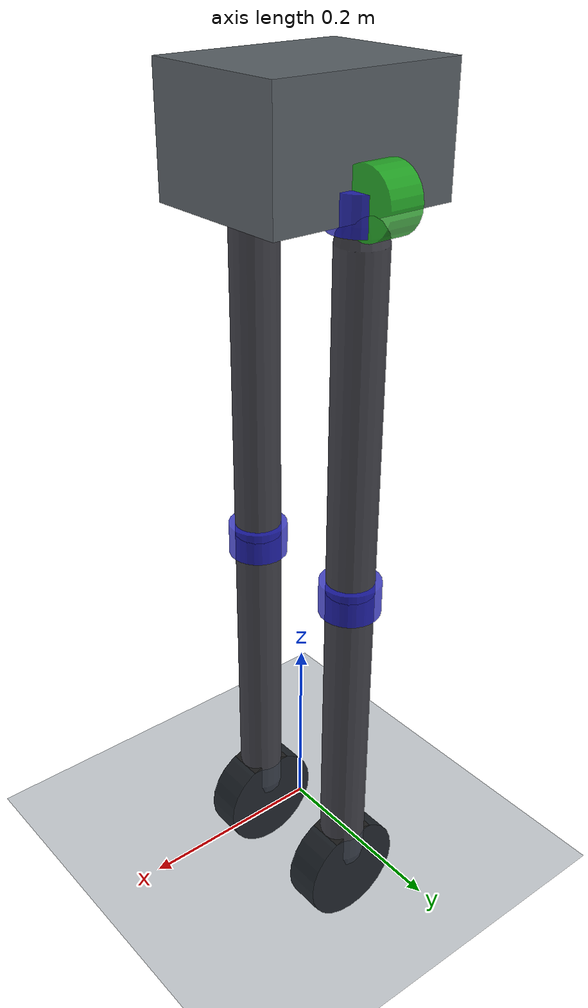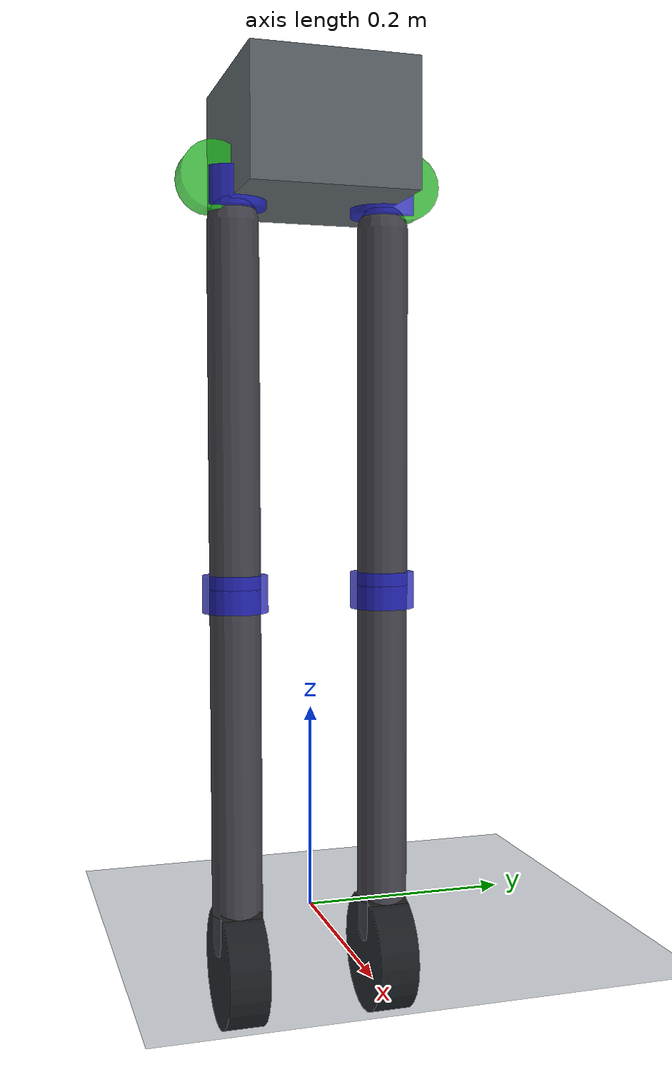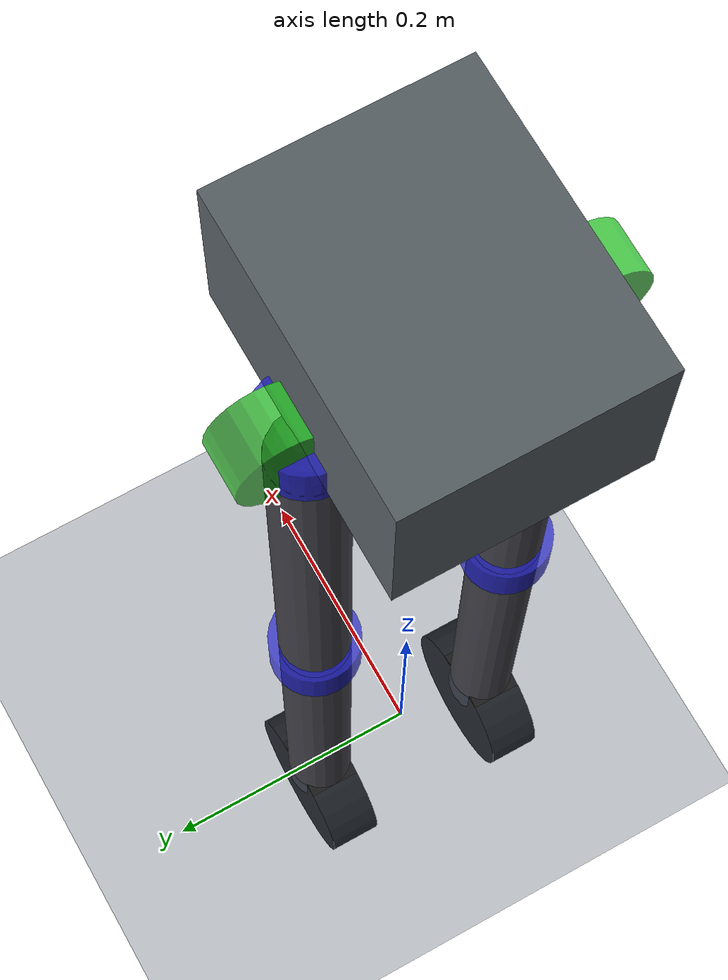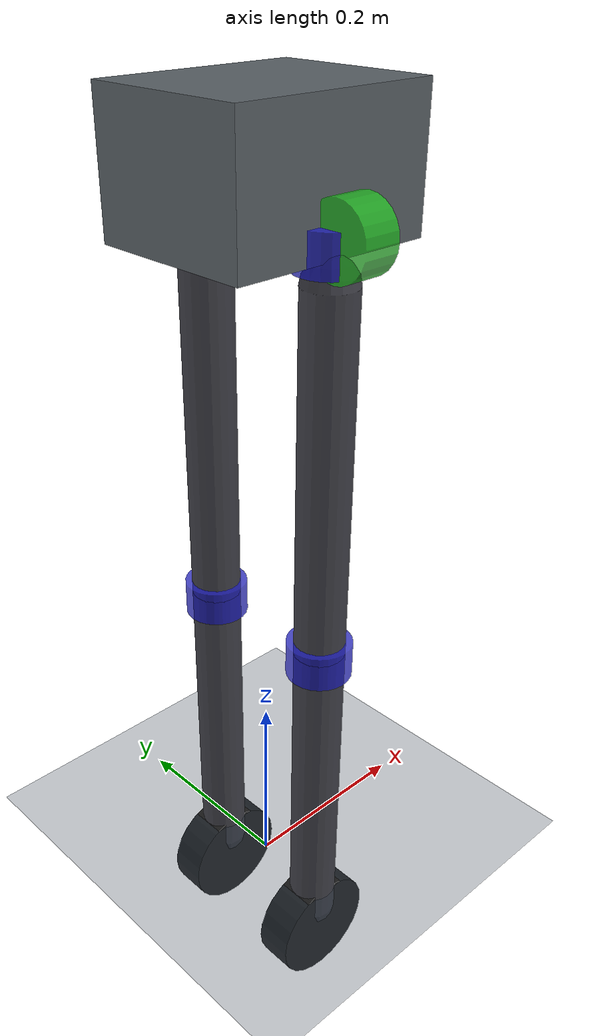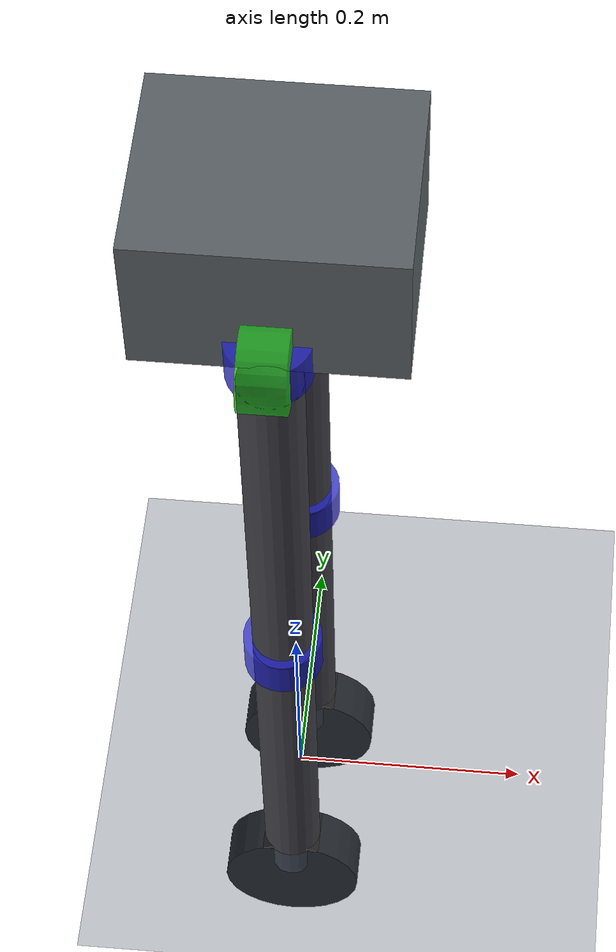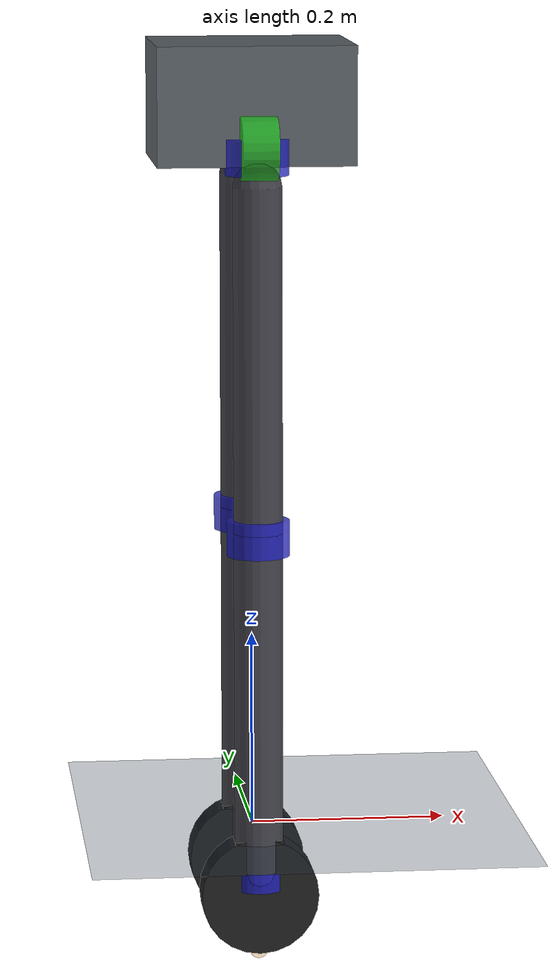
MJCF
<mujoco model="wheeled_biped">

  <!-- ==================== COMPILER ==================== -->
  <compiler angle="radian" autolimits="true"/>

  <!-- ==================== OPTIONS ==================== -->
  <option timestep="0.002" gravity="0 0 -9.81" integrator="implicitfast"
          iterations="4" ls_iterations="8" cone="pyramidal">
    <flag contact="enable"/>
  </option>

  <!-- ==================== SIZE ==================== -->
  <size nconmax="200" njmax="500"/>

  <!-- ==================== DEFAULTS ==================== -->
  <default>
    <!-- Mặc định toàn cục -->
    <default class="robot">
      <joint damping="1.0" armature="0.01" frictionloss="0.1"/>
      <geom condim="3" contype="1" conaffinity="1" friction="0.8 0.02 0.01"
            rgba="0.35 0.35 0.35 1"/>
      <motor ctrllimited="true"/>
    </default>

    <!-- Khớp khung chân -->
    <default class="leg_link">
      <geom type="capsule" size="0.025" rgba="0.25 0.25 0.28 1"/>
    </default>

    <!-- Khớp motor (hiển thị) -->
    <default class="motor_visual">
      <geom type="cylinder" size="0.032 0.018" contype="0" conaffinity="0"
            group="1" rgba="0.15 0.15 0.8 0.8"/>
    </default>

    <!-- Bánh xe -->
    <default class="wheel">
      <geom type="cylinder" condim="6" friction="1.5 0.005 0.001"
            rgba="0.12 0.12 0.12 1" priority="1"/>
    </default>
  </default>

  <!-- ==================== ASSETS ==================== -->
  <asset>
    <!-- Texture mặt đất -->
    <texture name="grid_tex" type="2d" builtin="checker" width="512" height="512"
             rgb1="0.12 0.18 0.25" rgb2="0.22 0.28 0.35"/>
    <material name="grid_mat" texture="grid_tex" texrepeat="10 10"
              reflectance="0.1"/>

    <!-- Material robot -->
    <material name="body_mat"  rgba="0.35 0.38 0.40 1" specular="0.5" shininess="0.3"/>
    <material name="leg_mat"   rgba="0.25 0.25 0.28 1" specular="0.3"/>
    <material name="wheel_mat" rgba="0.10 0.10 0.10 1" specular="0.1"/>
    <material name="motor_mat" rgba="0.15 0.15 0.70 0.9"/>
  </asset>

  <!-- ==================== WORLDBODY ==================== -->
  <worldbody>
    <!-- Ánh sáng -->
    <light name="top_light"    pos="0 0 3" dir="0 0 -1" diffuse="0.8 0.8 0.8"
           specular="0.3 0.3 0.3" castshadow="true"/>
    <light name="front_light"  pos="2 -2 2" dir="-1 1 -0.5" diffuse="0.4 0.4 0.4"/>

    <!-- Mặt đất -->
    <geom name="floor" type="plane" size="50 50 0.1" material="grid_mat"
          condim="3" contype="1" conaffinity="1"/>

    <!-- ==================== ROBOT BODY ==================== -->
    <body name="torso" pos="0 0 0.75">
      <freejoint name="root"/>

      <!-- Thân robot (contype=0: MJX không hỗ trợ cylinder-box collision) -->
      <geom name="torso_box" type="box" size="0.10 0.08 0.06"
            material="body_mat" mass="2.0" contype="0" conaffinity="0"/>

      <!-- Điểm gắn cảm biến IMU -->
      <site name="imu_site" pos="0 0 0" size="0.005" rgba="1 0 0 0.5"/>

      <!-- Điểm theo dõi trọng tâm -->
      <site name="torso_com" pos="0 0 0" size="0.01" rgba="0 1 0 0.3"/>

      <!-- =====================================================
           CHÂN TRÁI
           ===================================================== -->
      <body name="l_hip_roll_link" pos="0 0.075 -0.04">
        <inertial mass="0.4" pos="0 0.01 0"
                  diaginertia="0.0004 0.0004 0.0003"/>
        <joint name="l_hip_roll" type="hinge" axis="1 0 0"
               range="-0.5 0.5" damping="1.5" armature="0.02" ref="0"/>
        <geom name="l_hip_roll_motor" class="motor_visual"
              euler="0 1.5708 0" pos="0 0.02 0"
              rgba="0.15 0.75 0.15 0.8"/>

        <body name="l_hip_pitch_link" pos="0 0 0">
          <inertial mass="0.4" pos="0 0 -0.03"
                    diaginertia="0.0004 0.0004 0.0003"/>
          <joint name="l_hip_pitch" type="hinge" axis="0 1 0"
                 range="-1.5 1.5" damping="1.5" armature="0.02" ref="0"/>
          <geom name="l_hip_pitch_motor" class="motor_visual"
                pos="0 0 -0.01"/>

          <!-- Đùi trái (0.35m) -->
          <body name="l_thigh" pos="0 0 -0.04">
            <inertial mass="0.55" pos="0 0 -0.175"
                      diaginertia="0.0060 0.0060 0.0005"/>
            <geom name="l_thigh_geom" class="leg_link"
                  fromto="0 0 0  0 0 -0.35" material="leg_mat"
                  mass="0.55"/>
            <site name="l_thigh_center" pos="0 0 -0.175" size="0.005"/>

            <!-- Gối trái -->
            <body name="l_knee_link" pos="0 0 -0.35">
              <inertial mass="0.55" pos="0 0 -0.175"
                        diaginertia="0.0060 0.0060 0.0005"/>
              <joint name="l_knee" type="hinge" axis="0 1 0"
                     range="0.05 2.8" damping="1.5" armature="0.02" ref="0"/>
              <geom name="l_knee_motor" class="motor_visual"
                    pos="0 0 -0.005"/>
              <geom name="l_shin_geom" class="leg_link"
                    fromto="0 0 0  0 0 -0.35" material="leg_mat"
                    mass="0.55"/>
              <site name="l_shin_center" pos="0 0 -0.175" size="0.005"/>

              <!-- Cổ chân trái -->
              <body name="l_ankle_link" pos="0 0 -0.35">
                <inertial mass="0.15" pos="0 0 -0.01"
                          diaginertia="0.0002 0.0002 0.0001"/>
                <joint name="l_ankle" type="hinge" axis="0 1 0"
                       range="-1.0 1.0" damping="0.8" armature="0.01" ref="0"/>
                <geom name="l_ankle_motor" class="motor_visual"
                      size="0.028 0.015" pos="0 0 -0.005"/>

                <!-- Cảm biến tiếp xúc chân trái -->
                <site name="l_foot_contact" pos="0 0 -0.02"
                      size="0.02" rgba="1 1 0 0.3"/>

                <!-- Bánh xe trái -->
                <body name="l_wheel_link" pos="0 0 -0.025">
                  <inertial mass="0.55" pos="0 0 0"
                            diaginertia="0.0012 0.0018 0.0012"/>
                  <joint name="l_wheel" type="hinge" axis="0 1 0"
                         limited="false" damping="0.02" armature="0.008"/>
                  <geom name="l_wheel_geom" class="wheel"
                        size="0.06 0.02" euler="1.5708 0 0"
                        material="wheel_mat" mass="0.55"/>
                  <site name="l_wheel_contact" pos="0 0 -0.06"
                        size="0.01" rgba="1 0.5 0 0.3"/>
                </body>
              </body>
            </body>
          </body>
        </body>
      </body>

      <!-- =====================================================
           CHÂN PHẢI (đối xứng qua y=0)
           ===================================================== -->
      <body name="r_hip_roll_link" pos="0 -0.075 -0.04">
        <inertial mass="0.4" pos="0 -0.01 0"
                  diaginertia="0.0004 0.0004 0.0003"/>
        <joint name="r_hip_roll" type="hinge" axis="1 0 0"
               range="-0.5 0.5" damping="1.5" armature="0.02" ref="0"/>
        <geom name="r_hip_roll_motor" class="motor_visual"
              euler="0 1.5708 0" pos="0 -0.02 0"
              rgba="0.15 0.75 0.15 0.8"/>

        <body name="r_hip_pitch_link" pos="0 0 0">
          <inertial mass="0.4" pos="0 0 -0.03"
                    diaginertia="0.0004 0.0004 0.0003"/>
          <joint name="r_hip_pitch" type="hinge" axis="0 1 0"
                 range="-1.5 1.5" damping="1.5" armature="0.02" ref="0"/>
          <geom name="r_hip_pitch_motor" class="motor_visual"
                pos="0 0 -0.01"/>

          <!-- Đùi phải (0.35m) -->
          <body name="r_thigh" pos="0 0 -0.04">
            <inertial mass="0.55" pos="0 0 -0.175"
                      diaginertia="0.0060 0.0060 0.0005"/>
            <geom name="r_thigh_geom" class="leg_link"
                  fromto="0 0 0  0 0 -0.35" material="leg_mat"
                  mass="0.55"/>
            <site name="r_thigh_center" pos="0 0 -0.175" size="0.005"/>

            <!-- Gối phải -->
            <body name="r_knee_link" pos="0 0 -0.35">
              <inertial mass="0.55" pos="0 0 -0.175"
                        diaginertia="0.0060 0.0060 0.0005"/>
              <joint name="r_knee" type="hinge" axis="0 1 0"
                     range="0.05 2.8" damping="1.5" armature="0.02" ref="0"/>
              <geom name="r_knee_motor" class="motor_visual"
                    pos="0 0 -0.005"/>
              <geom name="r_shin_geom" class="leg_link"
                    fromto="0 0 0  0 0 -0.35" material="leg_mat"
                    mass="0.55"/>
              <site name="r_shin_center" pos="0 0 -0.175" size="0.005"/>

              <!-- Cổ chân phải -->
              <body name="r_ankle_link" pos="0 0 -0.35">
                <inertial mass="0.15" pos="0 0 -0.01"
                          diaginertia="0.0002 0.0002 0.0001"/>
                <joint name="r_ankle" type="hinge" axis="0 1 0"
                       range="-1.0 1.0" damping="0.8" armature="0.01" ref="0"/>
                <geom name="r_ankle_motor" class="motor_visual"
                      size="0.028 0.015" pos="0 0 -0.005"/>

                <!-- Cảm biến tiếp xúc chân phải -->
                <site name="r_foot_contact" pos="0 0 -0.02"
                      size="0.02" rgba="1 1 0 0.3"/>

                <!-- Bánh xe phải -->
                <body name="r_wheel_link" pos="0 0 -0.025">
                  <inertial mass="0.55" pos="0 0 0"
                            diaginertia="0.0012 0.0018 0.0012"/>
                  <joint name="r_wheel" type="hinge" axis="0 1 0"
                         limited="false" damping="0.02" armature="0.008"/>
                  <geom name="r_wheel_geom" class="wheel"
                        size="0.06 0.02" euler="1.5708 0 0"
                        material="wheel_mat" mass="0.55"/>
                  <site name="r_wheel_contact" pos="0 0 -0.06"
                        size="0.01" rgba="1 0.5 0 0.3"/>
                </body>
              </body>
            </body>
          </body>
        </body>
      </body>

    </body>  <!-- end torso -->
  </worldbody>

  <!-- ==================== CONTACT ==================== -->
  <contact>
    <!-- Loại trừ va chạm nội bộ giữa các link liền kề -->
    <exclude body1="torso"          body2="l_hip_roll_link"/>
    <exclude body1="torso"          body2="r_hip_roll_link"/>
    <exclude body1="l_hip_roll_link" body2="l_hip_pitch_link"/>
    <exclude body1="r_hip_roll_link" body2="r_hip_pitch_link"/>
    <exclude body1="l_hip_pitch_link" body2="l_thigh"/>
    <exclude body1="r_hip_pitch_link" body2="r_thigh"/>
    <exclude body1="l_thigh"        body2="l_knee_link"/>
    <exclude body1="r_thigh"        body2="r_knee_link"/>
    <exclude body1="l_knee_link"    body2="l_ankle_link"/>
    <exclude body1="r_knee_link"    body2="r_ankle_link"/>
    <exclude body1="l_ankle_link"   body2="l_wheel_link"/>
    <exclude body1="r_ankle_link"   body2="r_wheel_link"/>
    <!-- Loại trừ va chạm giữa shin và wheel (cách 1 link) -->
    <exclude body1="l_knee_link"    body2="l_wheel_link"/>
    <exclude body1="r_knee_link"    body2="r_wheel_link"/>
    <!-- Loại trừ va chạm thigh-torso (cách 2 link) -->
    <exclude body1="torso"          body2="l_thigh"/>
    <exclude body1="torso"          body2="r_thigh"/>
    <!-- Loại trừ torso với các body xa hơn -->
    <exclude body1="torso"          body2="l_knee_link"/>
    <exclude body1="torso"          body2="r_knee_link"/>
    <exclude body1="torso"          body2="l_ankle_link"/>
    <exclude body1="torso"          body2="r_ankle_link"/>
    <exclude body1="torso"          body2="l_wheel_link"/>
    <exclude body1="torso"          body2="r_wheel_link"/>
    <!-- Loại trừ va chạm giữa 2 chân cùng level -->
    <exclude body1="l_hip_roll_link" body2="r_hip_roll_link"/>
  </contact>

  <!-- ==================== ACTUATORS (10 động cơ) ==================== -->
  <actuator>
    <!-- Chân trái -->
    <motor name="l_hip_roll_motor"  joint="l_hip_roll"  gear="1"
           ctrlrange="-15 15"  forcelimited="true" forcerange="-15 15"/>
    <motor name="l_hip_pitch_motor" joint="l_hip_pitch" gear="1"
           ctrlrange="-15 15"  forcelimited="true" forcerange="-15 15"/>
    <motor name="l_knee_motor"      joint="l_knee"      gear="1"
           ctrlrange="-15 15"  forcelimited="true" forcerange="-15 15"/>
    <motor name="l_ankle_motor"     joint="l_ankle"     gear="1"
           ctrlrange="-10 10"  forcelimited="true" forcerange="-10 10"/>
    <motor name="l_wheel_motor"     joint="l_wheel"     gear="1"
           ctrlrange="-10 10"  forcelimited="true" forcerange="-10 10"/>

    <!-- Chân phải -->
    <motor name="r_hip_roll_motor"  joint="r_hip_roll"  gear="1"
           ctrlrange="-15 15"  forcelimited="true" forcerange="-15 15"/>
    <motor name="r_hip_pitch_motor" joint="r_hip_pitch" gear="1"
           ctrlrange="-15 15"  forcelimited="true" forcerange="-15 15"/>
    <motor name="r_knee_motor"      joint="r_knee"      gear="1"
           ctrlrange="-15 15"  forcelimited="true" forcerange="-15 15"/>
    <motor name="r_ankle_motor"     joint="r_ankle"     gear="1"
           ctrlrange="-10 10"  forcelimited="true" forcerange="-10 10"/>
    <motor name="r_wheel_motor"     joint="r_wheel"     gear="1"
           ctrlrange="-10 10"  forcelimited="true" forcerange="-10 10"/>
  </actuator>

  <!-- ==================== SENSORS ==================== -->
  <sensor>
    <!-- === IMU (cảm biến gia tốc + con quay hồi chuyển) === -->
    <accelerometer name="imu_accel"  site="imu_site"/>
    <gyro          name="imu_gyro"   site="imu_site"/>
    <framequat     name="imu_quat"   objtype="site" objname="imu_site"/>

    <!-- === Encoder vị trí khớp (10 khớp) === -->
    <jointpos name="l_hip_roll_pos"  joint="l_hip_roll"/>
    <jointpos name="l_hip_pitch_pos" joint="l_hip_pitch"/>
    <jointpos name="l_knee_pos"      joint="l_knee"/>
    <jointpos name="l_ankle_pos"     joint="l_ankle"/>
    <jointpos name="l_wheel_pos"     joint="l_wheel"/>
    <jointpos name="r_hip_roll_pos"  joint="r_hip_roll"/>
    <jointpos name="r_hip_pitch_pos" joint="r_hip_pitch"/>
    <jointpos name="r_knee_pos"      joint="r_knee"/>
    <jointpos name="r_ankle_pos"     joint="r_ankle"/>
    <jointpos name="r_wheel_pos"     joint="r_wheel"/>

    <!-- === Encoder vận tốc khớp (10 khớp) === -->
    <jointvel name="l_hip_roll_vel"  joint="l_hip_roll"/>
    <jointvel name="l_hip_pitch_vel" joint="l_hip_pitch"/>
    <jointvel name="l_knee_vel"      joint="l_knee"/>
    <jointvel name="l_ankle_vel"     joint="l_ankle"/>
    <jointvel name="l_wheel_vel"     joint="l_wheel"/>
    <jointvel name="r_hip_roll_vel"  joint="r_hip_roll"/>
    <jointvel name="r_hip_pitch_vel" joint="r_hip_pitch"/>
    <jointvel name="r_knee_vel"      joint="r_knee"/>
    <jointvel name="r_ankle_vel"     joint="r_ankle"/>
    <jointvel name="r_wheel_vel"     joint="r_wheel"/>

    <!-- === Lực tiếp xúc (ước lượng từ torque cảm biến) === -->
    <torque name="l_ankle_torque" site="l_foot_contact"/>
    <torque name="r_ankle_torque" site="r_foot_contact"/>
  </sensor>

  <!-- ==================== KEYFRAME (tư thế khởi đầu) ==================== -->
  <!-- qpos: [root_pos(3) root_quat(4) | l_hip_roll l_hip_pitch l_knee l_ankle l_wheel |
                                          r_hip_roll r_hip_pitch r_knee r_ankle r_wheel] -->
  <keyframe>
    <key name="standing"
         qpos="0 0 0.68
               1 0 0 0
               0 -0.72 1.44 -0.72 0
               0 -0.72 1.44 -0.72 0"
         ctrl="0 1.8 -2.2 0 0
               0 1.8 -2.2 0 0"/>
  </keyframe>

</mujoco>
